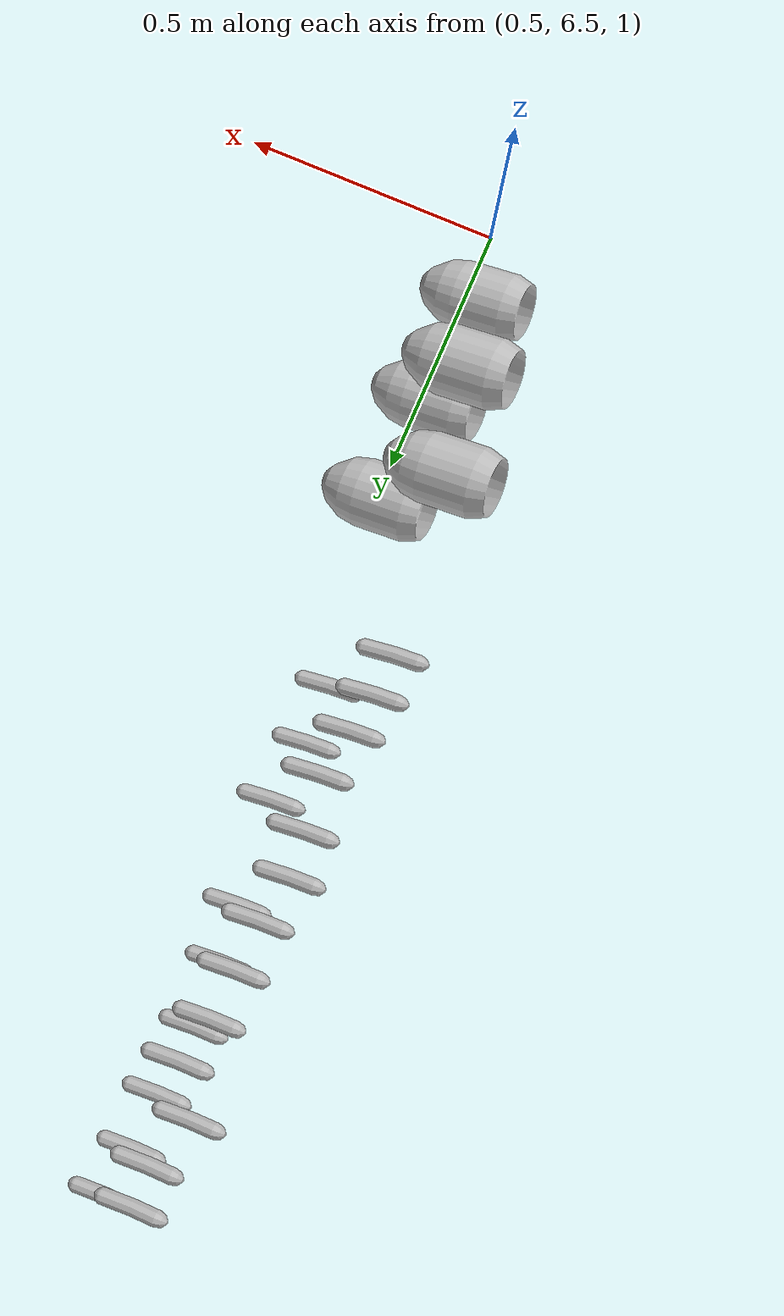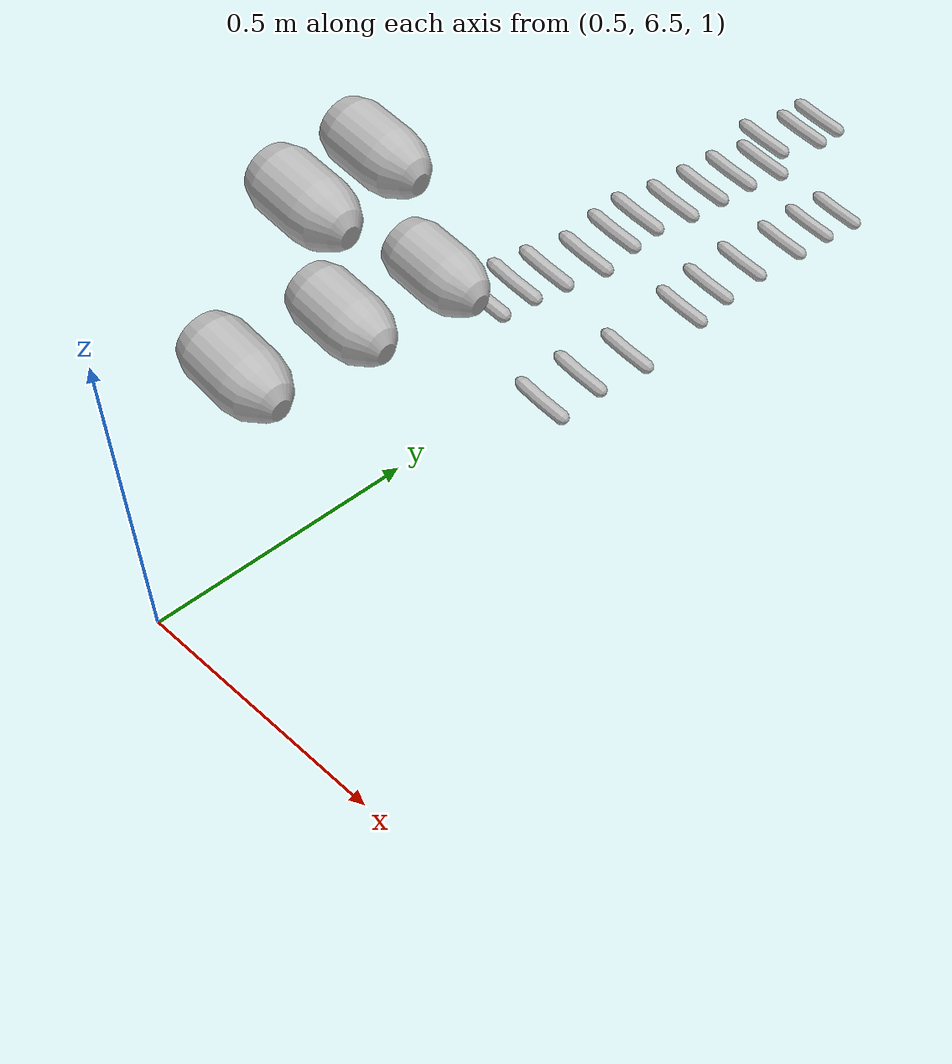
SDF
<sdf version="1.6">
 <world name="default">
  <model name="lettuce_clone_2">
   <link name="link_0">
    <inertial>
     <mass>1</mass>
     <inertia>
      <ixx>0.166667</ixx>
      <ixy>0</ixy>
      <ixz>0</ixz>
      <iyy>0.166667</iyy>
      <iyz>0</iyz>
      <izz>0.166667</izz>
     </inertia>
    </inertial>
    <visual name="visual">
     <geometry><mesh><uri>model://lettuce/meshes/lettuce.dae</uri><scale>3 3 3</scale></mesh></geometry>
    </visual>
    <collision name="collision">
     <geometry><mesh><uri>model://lettuce/meshes/lettuce.dae</uri><scale>3 3 3</scale></mesh></geometry>
     <surface>
      <friction>
       <ode><mu>1</mu><mu2>1</mu2><fdir1>0 0 0</fdir1><slip1>0</slip1><slip2>0</slip2></ode>
       <torsional>
        <coefficient>1</coefficient>
        <patch_radius>0</patch_radius>
        <surface_radius>0</surface_radius>
        <use_patch_radius>1</use_patch_radius>
        <ode><slip>0</slip></ode>
       </torsional>
      </friction>
      <bounce><restitution_coefficient>0</restitution_coefficient><threshold>1e+06</threshold></bounce>
      <contact>
       <collide_without_contact>0</collide_without_contact>
       <collide_without_contact_bitmask>1</collide_without_contact_bitmask>
       <collide_bitmask>1</collide_bitmask>
       <ode>
        <soft_cfm>0</soft_cfm>
        <soft_erp>0.2</soft_erp>
        <kp>1e+13</kp>
        <kd>1</kd>
        <max_vel>0.01</max_vel>
        <min_depth>0</min_depth>
       </ode>
       <bullet>
        <split_impulse>1</split_impulse>
        <split_impulse_penetration_threshold>-0.01</split_impulse_penetration_threshold>
        <soft_cfm>0</soft_cfm>
        <soft_erp>0.2</soft_erp>
        <kp>1e+13</kp>
        <kd>1</kd>
       </bullet>
      </contact>
     </surface>
    </collision>
   </link>
   <static>1</static>
   <pose>0.329296 6.93894 1.55681 3.14159 1.32136 3.14159</pose>
  </model>
  <model name="lettuce_clone_3">
   <link name="link_0">
    <inertial>
     <mass>1</mass>
     <inertia>
      <ixx>0.166667</ixx>
      <ixy>0</ixy>
      <ixz>0</ixz>
      <iyy>0.166667</iyy>
      <iyz>0</iyz>
      <izz>0.166667</izz>
     </inertia>
    </inertial>
    <visual name="visual">
     <geometry><mesh><uri>model://lettuce/meshes/lettuce.dae</uri><scale>3 3 3</scale></mesh></geometry>
    </visual>
    <collision name="collision">
     <geometry><mesh><uri>model://lettuce/meshes/lettuce.dae</uri><scale>3 3 3</scale></mesh></geometry>
     <surface>
      <friction>
       <ode><mu>1</mu><mu2>1</mu2><fdir1>0 0 0</fdir1><slip1>0</slip1><slip2>0</slip2></ode>
       <torsional>
        <coefficient>1</coefficient>
        <patch_radius>0</patch_radius>
        <surface_radius>0</surface_radius>
        <use_patch_radius>1</use_patch_radius>
        <ode><slip>0</slip></ode>
       </torsional>
      </friction>
      <bounce><restitution_coefficient>0</restitution_coefficient><threshold>1e+06</threshold></bounce>
      <contact>
       <collide_without_contact>0</collide_without_contact>
       <collide_without_contact_bitmask>1</collide_without_contact_bitmask>
       <collide_bitmask>1</collide_bitmask>
       <ode>
        <soft_cfm>0</soft_cfm>
        <soft_erp>0.2</soft_erp>
        <kp>1e+13</kp>
        <kd>1</kd>
        <max_vel>0.01</max_vel>
        <min_depth>0</min_depth>
       </ode>
       <bullet>
        <split_impulse>1</split_impulse>
        <split_impulse_penetration_threshold>-0.01</split_impulse_penetration_threshold>
        <soft_cfm>0</soft_cfm>
        <soft_erp>0.2</soft_erp>
        <kp>1e+13</kp>
        <kd>1</kd>
       </bullet>
      </contact>
     </surface>
    </collision>
   </link>
   <static>1</static>
   <pose>0.285818 7.12224 1.55681 3.14159 1.32136 3.14159</pose>
  </model>
  <model name="lettuce_clone_4_clone_1">
   <link name="link_0">
    <inertial>
     <mass>1</mass>
     <inertia>
      <ixx>0.166667</ixx>
      <ixy>0</ixy>
      <ixz>0</ixz>
      <iyy>0.166667</iyy>
      <iyz>0</iyz>
      <izz>0.166667</izz>
     </inertia>
    </inertial>
    <visual name="visual">
     <geometry><mesh><uri>model://lettuce/meshes/lettuce.dae</uri><scale>3 3 3</scale></mesh></geometry>
    </visual>
    <collision name="collision">
     <geometry><mesh><uri>model://lettuce/meshes/lettuce.dae</uri><scale>3 3 3</scale></mesh></geometry>
     <surface>
      <friction>
       <ode><mu>1</mu><mu2>1</mu2><fdir1>0 0 0</fdir1><slip1>0</slip1><slip2>0</slip2></ode>
       <torsional>
        <coefficient>1</coefficient>
        <patch_radius>0</patch_radius>
        <surface_radius>0</surface_radius>
        <use_patch_radius>1</use_patch_radius>
        <ode><slip>0</slip></ode>
       </torsional>
      </friction>
      <bounce><restitution_coefficient>0</restitution_coefficient><threshold>1e+06</threshold></bounce>
      <contact>
       <collide_without_contact>0</collide_without_contact>
       <collide_without_contact_bitmask>1</collide_without_contact_bitmask>
       <collide_bitmask>1</collide_bitmask>
       <ode>
        <soft_cfm>0</soft_cfm>
        <soft_erp>0.2</soft_erp>
        <kp>1e+13</kp>
        <kd>1</kd>
        <max_vel>0.01</max_vel>
        <min_depth>0</min_depth>
       </ode>
       <bullet>
        <split_impulse>1</split_impulse>
        <split_impulse_penetration_threshold>-0.01</split_impulse_penetration_threshold>
        <soft_cfm>0</soft_cfm>
        <soft_erp>0.2</soft_erp>
        <kp>1e+13</kp>
        <kd>1</kd>
       </bullet>
      </contact>
     </surface>
    </collision>
   </link>
   <static>1</static>
   <pose>0.364357 6.74665 1.35049 3.14159 1.32136 3.14159</pose>
  </model>
  <model name="lettuce_clone_4_clone_2">
   <link name="link_0">
    <inertial>
     <mass>1</mass>
     <inertia>
      <ixx>0.166667</ixx>
      <ixy>0</ixy>
      <ixz>0</ixz>
      <iyy>0.166667</iyy>
      <iyz>0</iyz>
      <izz>0.166667</izz>
     </inertia>
    </inertial>
    <visual name="visual">
     <geometry><mesh><uri>model://lettuce/meshes/lettuce.dae</uri><scale>3 3 3</scale></mesh></geometry>
    </visual>
    <collision name="collision">
     <geometry><mesh><uri>model://lettuce/meshes/lettuce.dae</uri><scale>3 3 3</scale></mesh></geometry>
     <surface>
      <friction>
       <ode><mu>1</mu><mu2>1</mu2><fdir1>0 0 0</fdir1><slip1>0</slip1><slip2>0</slip2></ode>
       <torsional>
        <coefficient>1</coefficient>
        <patch_radius>0</patch_radius>
        <surface_radius>0</surface_radius>
        <use_patch_radius>1</use_patch_radius>
        <ode><slip>0</slip></ode>
       </torsional>
      </friction>
      <bounce><restitution_coefficient>0</restitution_coefficient><threshold>1e+06</threshold></bounce>
      <contact>
       <collide_without_contact>0</collide_without_contact>
       <collide_without_contact_bitmask>1</collide_without_contact_bitmask>
       <collide_bitmask>1</collide_bitmask>
       <ode>
        <soft_cfm>0</soft_cfm>
        <soft_erp>0.2</soft_erp>
        <kp>1e+13</kp>
        <kd>1</kd>
        <max_vel>0.01</max_vel>
        <min_depth>0</min_depth>
       </ode>
       <bullet>
        <split_impulse>1</split_impulse>
        <split_impulse_penetration_threshold>-0.01</split_impulse_penetration_threshold>
        <soft_cfm>0</soft_cfm>
        <soft_erp>0.2</soft_erp>
        <kp>1e+13</kp>
        <kd>1</kd>
       </bullet>
      </contact>
     </surface>
    </collision>
   </link>
   <static>1</static>
   <pose>0.372097 6.95066 1.35049 3.14159 1.32136 3.14159</pose>
  </model>
  <model name="lettuce_clone_4_clone_3">
   <link name="link_0">
    <inertial>
     <mass>1</mass>
     <inertia>
      <ixx>0.166667</ixx>
      <ixy>0</ixy>
      <ixz>0</ixz>
      <iyy>0.166667</iyy>
      <iyz>0</iyz>
      <izz>0.166667</izz>
     </inertia>
    </inertial>
    <visual name="visual">
     <geometry><mesh><uri>model://lettuce/meshes/lettuce.dae</uri><scale>3 3 3</scale></mesh></geometry>
    </visual>
    <collision name="collision">
     <geometry><mesh><uri>model://lettuce/meshes/lettuce.dae</uri><scale>3 3 3</scale></mesh></geometry>
     <surface>
      <friction>
       <ode><mu>1</mu><mu2>1</mu2><fdir1>0 0 0</fdir1><slip1>0</slip1><slip2>0</slip2></ode>
       <torsional>
        <coefficient>1</coefficient>
        <patch_radius>0</patch_radius>
        <surface_radius>0</surface_radius>
        <use_patch_radius>1</use_patch_radius>
        <ode><slip>0</slip></ode>
       </torsional>
      </friction>
      <bounce><restitution_coefficient>0</restitution_coefficient><threshold>1e+06</threshold></bounce>
      <contact>
       <collide_without_contact>0</collide_without_contact>
       <collide_without_contact_bitmask>1</collide_without_contact_bitmask>
       <collide_bitmask>1</collide_bitmask>
       <ode>
        <soft_cfm>0</soft_cfm>
        <soft_erp>0.2</soft_erp>
        <kp>1e+13</kp>
        <kd>1</kd>
        <max_vel>0.01</max_vel>
        <min_depth>0</min_depth>
       </ode>
       <bullet>
        <split_impulse>1</split_impulse>
        <split_impulse_penetration_threshold>-0.01</split_impulse_penetration_threshold>
        <soft_cfm>0</soft_cfm>
        <soft_erp>0.2</soft_erp>
        <kp>1e+13</kp>
        <kd>1</kd>
       </bullet>
      </contact>
     </surface>
    </collision>
   </link>
   <static>1</static>
   <pose>0.382097 7.14967 1.35049 3.14159 1.32136 3.14159</pose>
  </model>
  <model name="cucumber_clone_11">
   <link name="link_0">
    <inertial>
     <mass>1</mass>
     <inertia>
      <ixx>0.166667</ixx>
      <ixy>0</ixy>
      <ixz>0</ixz>
      <iyy>0.166667</iyy>
      <iyz>0</iyz>
      <izz>0.166667</izz>
     </inertia>
    </inertial>
    <visual name="visual">
     <geometry><mesh><uri>model://cucumber/meshes/cucumber.dae</uri><scale>1 1 1</scale></mesh></geometry>
     <cast_shadows>0</cast_shadows>
    </visual>
    <collision name="collision">
     <geometry><mesh><uri>model://cucumber/meshes/cucumber.dae</uri><scale>1 1 1</scale></mesh></geometry>
     <surface>
      <friction>
       <ode><mu>1</mu><mu2>1</mu2><fdir1>0 0 0</fdir1><slip1>0</slip1><slip2>0</slip2></ode>
       <torsional>
        <coefficient>1</coefficient>
        <patch_radius>0</patch_radius>
        <surface_radius>0</surface_radius>
        <use_patch_radius>1</use_patch_radius>
        <ode><slip>0</slip></ode>
       </torsional>
      </friction>
      <bounce><restitution_coefficient>0</restitution_coefficient><threshold>1e+06</threshold></bounce>
      <contact>
       <collide_without_contact>0</collide_without_contact>
       <collide_without_contact_bitmask>1</collide_without_contact_bitmask>
       <collide_bitmask>1</collide_bitmask>
       <ode>
        <soft_cfm>0</soft_cfm>
        <soft_erp>0.2</soft_erp>
        <kp>1e+13</kp>
        <kd>1</kd>
        <max_vel>0.01</max_vel>
        <min_depth>0</min_depth>
       </ode>
       <bullet>
        <split_impulse>1</split_impulse>
        <split_impulse_penetration_threshold>-0.01</split_impulse_penetration_threshold>
        <soft_cfm>0</soft_cfm>
        <soft_erp>0.2</soft_erp>
        <kp>1e+13</kp>
        <kd>1</kd>
       </bullet>
      </contact>
     </surface>
    </collision>
   </link>
   <static>1</static>
   <pose>0.433363 8.16033 1.10565 0.305162 0 1.61482</pose>
  </model>
  <model name="cucumber_clone_11_clone">
   <link name="link_0">
    <inertial>
     <mass>1</mass>
     <inertia>
      <ixx>0.166667</ixx>
      <ixy>0</ixy>
      <ixz>0</ixz>
      <iyy>0.166667</iyy>
      <iyz>0</iyz>
      <izz>0.166667</izz>
     </inertia>
    </inertial>
    <visual name="visual">
     <geometry><mesh><uri>model://cucumber/meshes/cucumber.dae</uri><scale>1 1 1</scale></mesh></geometry>
     <cast_shadows>0</cast_shadows>
    </visual>
    <collision name="collision">
     <geometry><mesh><uri>model://cucumber/meshes/cucumber.dae</uri><scale>1 1 1</scale></mesh></geometry>
     <surface>
      <friction>
       <ode><mu>1</mu><mu2>1</mu2><fdir1>0 0 0</fdir1><slip1>0</slip1><slip2>0</slip2></ode>
       <torsional>
        <coefficient>1</coefficient>
        <patch_radius>0</patch_radius>
        <surface_radius>0</surface_radius>
        <use_patch_radius>1</use_patch_radius>
        <ode><slip>0</slip></ode>
       </torsional>
      </friction>
      <bounce><restitution_coefficient>0</restitution_coefficient><threshold>1e+06</threshold></bounce>
      <contact>
       <collide_without_contact>0</collide_without_contact>
       <collide_without_contact_bitmask>1</collide_without_contact_bitmask>
       <collide_bitmask>1</collide_bitmask>
       <ode>
        <soft_cfm>0</soft_cfm>
        <soft_erp>0.2</soft_erp>
        <kp>1e+13</kp>
        <kd>1</kd>
        <max_vel>0.01</max_vel>
        <min_depth>0</min_depth>
       </ode>
       <bullet>
        <split_impulse>1</split_impulse>
        <split_impulse_penetration_threshold>-0.01</split_impulse_penetration_threshold>
        <soft_cfm>0</soft_cfm>
        <soft_erp>0.2</soft_erp>
        <kp>1e+13</kp>
        <kd>1</kd>
       </bullet>
      </contact>
     </surface>
    </collision>
   </link>
   <static>1</static>
   <pose>0.368449 7.34401 1.10565 0.305162 0 1.61482</pose>
  </model>
  <model name="cucumber_clone_11_clone_0">
   <link name="link_0">
    <inertial>
     <mass>1</mass>
     <inertia>
      <ixx>0.166667</ixx>
      <ixy>0</ixy>
      <ixz>0</ixz>
      <iyy>0.166667</iyy>
      <iyz>0</iyz>
      <izz>0.166667</izz>
     </inertia>
    </inertial>
    <visual name="visual">
     <geometry><mesh><uri>model://cucumber/meshes/cucumber.dae</uri><scale>1 1 1</scale></mesh></geometry>
     <cast_shadows>0</cast_shadows>
    </visual>
    <collision name="collision">
     <geometry><mesh><uri>model://cucumber/meshes/cucumber.dae</uri><scale>1 1 1</scale></mesh></geometry>
     <surface>
      <friction>
       <ode><mu>1</mu><mu2>1</mu2><fdir1>0 0 0</fdir1><slip1>0</slip1><slip2>0</slip2></ode>
       <torsional>
        <coefficient>1</coefficient>
        <patch_radius>0</patch_radius>
        <surface_radius>0</surface_radius>
        <use_patch_radius>1</use_patch_radius>
        <ode><slip>0</slip></ode>
       </torsional>
      </friction>
      <bounce><restitution_coefficient>0</restitution_coefficient><threshold>1e+06</threshold></bounce>
      <contact>
       <collide_without_contact>0</collide_without_contact>
       <collide_without_contact_bitmask>1</collide_without_contact_bitmask>
       <collide_bitmask>1</collide_bitmask>
       <ode>
        <soft_cfm>0</soft_cfm>
        <soft_erp>0.2</soft_erp>
        <kp>1e+13</kp>
        <kd>1</kd>
        <max_vel>0.01</max_vel>
        <min_depth>0</min_depth>
       </ode>
       <bullet>
        <split_impulse>1</split_impulse>
        <split_impulse_penetration_threshold>-0.01</split_impulse_penetration_threshold>
        <soft_cfm>0</soft_cfm>
        <soft_erp>0.2</soft_erp>
        <kp>1e+13</kp>
        <kd>1</kd>
       </bullet>
      </contact>
     </surface>
    </collision>
   </link>
   <static>1</static>
   <pose>0.373405 7.42603 1.10565 0.305162 0 1.61482</pose>
  </model>
  <model name="cucumber_clone_11_clone_1">
   <link name="link_0">
    <inertial>
     <mass>1</mass>
     <inertia>
      <ixx>0.166667</ixx>
      <ixy>0</ixy>
      <ixz>0</ixz>
      <iyy>0.166667</iyy>
      <iyz>0</iyz>
      <izz>0.166667</izz>
     </inertia>
    </inertial>
    <visual name="visual">
     <geometry><mesh><uri>model://cucumber/meshes/cucumber.dae</uri><scale>1 1 1</scale></mesh></geometry>
     <cast_shadows>0</cast_shadows>
    </visual>
    <collision name="collision">
     <geometry><mesh><uri>model://cucumber/meshes/cucumber.dae</uri><scale>1 1 1</scale></mesh></geometry>
     <surface>
      <friction>
       <ode><mu>1</mu><mu2>1</mu2><fdir1>0 0 0</fdir1><slip1>0</slip1><slip2>0</slip2></ode>
       <torsional>
        <coefficient>1</coefficient>
        <patch_radius>0</patch_radius>
        <surface_radius>0</surface_radius>
        <use_patch_radius>1</use_patch_radius>
        <ode><slip>0</slip></ode>
       </torsional>
      </friction>
      <bounce><restitution_coefficient>0</restitution_coefficient><threshold>1e+06</threshold></bounce>
      <contact>
       <collide_without_contact>0</collide_without_contact>
       <collide_without_contact_bitmask>1</collide_without_contact_bitmask>
       <collide_bitmask>1</collide_bitmask>
       <ode>
        <soft_cfm>0</soft_cfm>
        <soft_erp>0.2</soft_erp>
        <kp>1e+13</kp>
        <kd>1</kd>
        <max_vel>0.01</max_vel>
        <min_depth>0</min_depth>
       </ode>
       <bullet>
        <split_impulse>1</split_impulse>
        <split_impulse_penetration_threshold>-0.01</split_impulse_penetration_threshold>
        <soft_cfm>0</soft_cfm>
        <soft_erp>0.2</soft_erp>
        <kp>1e+13</kp>
        <kd>1</kd>
       </bullet>
      </contact>
     </surface>
    </collision>
   </link>
   <static>1</static>
   <pose>0.386532 7.50345 1.10565 0.305162 0 1.61482</pose>
  </model>
  <model name="cucumber_clone_11_clone_2">
   <link name="link_0">
    <inertial>
     <mass>1</mass>
     <inertia>
      <ixx>0.166667</ixx>
      <ixy>0</ixy>
      <ixz>0</ixz>
      <iyy>0.166667</iyy>
      <iyz>0</iyz>
      <izz>0.166667</izz>
     </inertia>
    </inertial>
    <visual name="visual">
     <geometry><mesh><uri>model://cucumber/meshes/cucumber.dae</uri><scale>1 1 1</scale></mesh></geometry>
     <cast_shadows>0</cast_shadows>
    </visual>
    <collision name="collision">
     <geometry><mesh><uri>model://cucumber/meshes/cucumber.dae</uri><scale>1 1 1</scale></mesh></geometry>
     <surface>
      <friction>
       <ode><mu>1</mu><mu2>1</mu2><fdir1>0 0 0</fdir1><slip1>0</slip1><slip2>0</slip2></ode>
       <torsional>
        <coefficient>1</coefficient>
        <patch_radius>0</patch_radius>
        <surface_radius>0</surface_radius>
        <use_patch_radius>1</use_patch_radius>
        <ode><slip>0</slip></ode>
       </torsional>
      </friction>
      <bounce><restitution_coefficient>0</restitution_coefficient><threshold>1e+06</threshold></bounce>
      <contact>
       <collide_without_contact>0</collide_without_contact>
       <collide_without_contact_bitmask>1</collide_without_contact_bitmask>
       <collide_bitmask>1</collide_bitmask>
       <ode>
        <soft_cfm>0</soft_cfm>
        <soft_erp>0.2</soft_erp>
        <kp>1e+13</kp>
        <kd>1</kd>
        <max_vel>0.01</max_vel>
        <min_depth>0</min_depth>
       </ode>
       <bullet>
        <split_impulse>1</split_impulse>
        <split_impulse_penetration_threshold>-0.01</split_impulse_penetration_threshold>
        <soft_cfm>0</soft_cfm>
        <soft_erp>0.2</soft_erp>
        <kp>1e+13</kp>
        <kd>1</kd>
       </bullet>
      </contact>
     </surface>
    </collision>
   </link>
   <static>1</static>
   <pose>0.408234 7.59748 1.10565 0.305162 0 1.61482</pose>
  </model>
  <model name="cucumber_clone_11_clone_3">
   <link name="link_0">
    <inertial>
     <mass>1</mass>
     <inertia>
      <ixx>0.166667</ixx>
      <ixy>0</ixy>
      <ixz>0</ixz>
      <iyy>0.166667</iyy>
      <iyz>0</iyz>
      <izz>0.166667</izz>
     </inertia>
    </inertial>
    <visual name="visual">
     <geometry><mesh><uri>model://cucumber/meshes/cucumber.dae</uri><scale>1 1 1</scale></mesh></geometry>
     <cast_shadows>0</cast_shadows>
    </visual>
    <collision name="collision">
     <geometry><mesh><uri>model://cucumber/meshes/cucumber.dae</uri><scale>1 1 1</scale></mesh></geometry>
     <surface>
      <friction>
       <ode><mu>1</mu><mu2>1</mu2><fdir1>0 0 0</fdir1><slip1>0</slip1><slip2>0</slip2></ode>
       <torsional>
        <coefficient>1</coefficient>
        <patch_radius>0</patch_radius>
        <surface_radius>0</surface_radius>
        <use_patch_radius>1</use_patch_radius>
        <ode><slip>0</slip></ode>
       </torsional>
      </friction>
      <bounce><restitution_coefficient>0</restitution_coefficient><threshold>1e+06</threshold></bounce>
      <contact>
       <collide_without_contact>0</collide_without_contact>
       <collide_without_contact_bitmask>1</collide_without_contact_bitmask>
       <collide_bitmask>1</collide_bitmask>
       <ode>
        <soft_cfm>0</soft_cfm>
        <soft_erp>0.2</soft_erp>
        <kp>1e+13</kp>
        <kd>1</kd>
        <max_vel>0.01</max_vel>
        <min_depth>0</min_depth>
       </ode>
       <bullet>
        <split_impulse>1</split_impulse>
        <split_impulse_penetration_threshold>-0.01</split_impulse_penetration_threshold>
        <soft_cfm>0</soft_cfm>
        <soft_erp>0.2</soft_erp>
        <kp>1e+13</kp>
        <kd>1</kd>
       </bullet>
      </contact>
     </surface>
    </collision>
   </link>
   <static>1</static>
   <pose>0.391285 7.70251 1.10565 0.305162 0 1.61482</pose>
  </model>
  <model name="cucumber_clone_11_clone_4">
   <link name="link_0">
    <inertial>
     <mass>1</mass>
     <inertia>
      <ixx>0.166667</ixx>
      <ixy>0</ixy>
      <ixz>0</ixz>
      <iyy>0.166667</iyy>
      <iyz>0</iyz>
      <izz>0.166667</izz>
     </inertia>
    </inertial>
    <visual name="visual">
     <geometry><mesh><uri>model://cucumber/meshes/cucumber.dae</uri><scale>1 1 1</scale></mesh></geometry>
     <cast_shadows>0</cast_shadows>
    </visual>
    <collision name="collision">
     <geometry><mesh><uri>model://cucumber/meshes/cucumber.dae</uri><scale>1 1 1</scale></mesh></geometry>
     <surface>
      <friction>
       <ode><mu>1</mu><mu2>1</mu2><fdir1>0 0 0</fdir1><slip1>0</slip1><slip2>0</slip2></ode>
       <torsional>
        <coefficient>1</coefficient>
        <patch_radius>0</patch_radius>
        <surface_radius>0</surface_radius>
        <use_patch_radius>1</use_patch_radius>
        <ode><slip>0</slip></ode>
       </torsional>
      </friction>
      <bounce><restitution_coefficient>0</restitution_coefficient><threshold>1e+06</threshold></bounce>
      <contact>
       <collide_without_contact>0</collide_without_contact>
       <collide_without_contact_bitmask>1</collide_without_contact_bitmask>
       <collide_bitmask>1</collide_bitmask>
       <ode>
        <soft_cfm>0</soft_cfm>
        <soft_erp>0.2</soft_erp>
        <kp>1e+13</kp>
        <kd>1</kd>
        <max_vel>0.01</max_vel>
        <min_depth>0</min_depth>
       </ode>
       <bullet>
        <split_impulse>1</split_impulse>
        <split_impulse_penetration_threshold>-0.01</split_impulse_penetration_threshold>
        <soft_cfm>0</soft_cfm>
        <soft_erp>0.2</soft_erp>
        <kp>1e+13</kp>
        <kd>1</kd>
       </bullet>
      </contact>
     </surface>
    </collision>
   </link>
   <static>1</static>
   <pose>0.380927 7.78866 1.10565 0.305162 0 1.61482</pose>
  </model>
  <model name="cucumber_clone_11_clone_5">
   <link name="link_0">
    <inertial>
     <mass>1</mass>
     <inertia>
      <ixx>0.166667</ixx>
      <ixy>0</ixy>
      <ixz>0</ixz>
      <iyy>0.166667</iyy>
      <iyz>0</iyz>
      <izz>0.166667</izz>
     </inertia>
    </inertial>
    <visual name="visual">
     <geometry><mesh><uri>model://cucumber/meshes/cucumber.dae</uri><scale>1 1 1</scale></mesh></geometry>
     <cast_shadows>0</cast_shadows>
    </visual>
    <collision name="collision">
     <geometry><mesh><uri>model://cucumber/meshes/cucumber.dae</uri><scale>1 1 1</scale></mesh></geometry>
     <surface>
      <friction>
       <ode><mu>1</mu><mu2>1</mu2><fdir1>0 0 0</fdir1><slip1>0</slip1><slip2>0</slip2></ode>
       <torsional>
        <coefficient>1</coefficient>
        <patch_radius>0</patch_radius>
        <surface_radius>0</surface_radius>
        <use_patch_radius>1</use_patch_radius>
        <ode><slip>0</slip></ode>
       </torsional>
      </friction>
      <bounce><restitution_coefficient>0</restitution_coefficient><threshold>1e+06</threshold></bounce>
      <contact>
       <collide_without_contact>0</collide_without_contact>
       <collide_without_contact_bitmask>1</collide_without_contact_bitmask>
       <collide_bitmask>1</collide_bitmask>
       <ode>
        <soft_cfm>0</soft_cfm>
        <soft_erp>0.2</soft_erp>
        <kp>1e+13</kp>
        <kd>1</kd>
        <max_vel>0.01</max_vel>
        <min_depth>0</min_depth>
       </ode>
       <bullet>
        <split_impulse>1</split_impulse>
        <split_impulse_penetration_threshold>-0.01</split_impulse_penetration_threshold>
        <soft_cfm>0</soft_cfm>
        <soft_erp>0.2</soft_erp>
        <kp>1e+13</kp>
        <kd>1</kd>
       </bullet>
      </contact>
     </surface>
    </collision>
   </link>
   <static>1</static>
   <pose>0.401426 7.88127 1.10565 0.305162 0 1.61482</pose>
  </model>
  <model name="cucumber_clone_11_clone_6">
   <link name="link_0">
    <inertial>
     <mass>1</mass>
     <inertia>
      <ixx>0.166667</ixx>
      <ixy>0</ixy>
      <ixz>0</ixz>
      <iyy>0.166667</iyy>
      <iyz>0</iyz>
      <izz>0.166667</izz>
     </inertia>
    </inertial>
    <visual name="visual">
     <geometry><mesh><uri>model://cucumber/meshes/cucumber.dae</uri><scale>1 1 1</scale></mesh></geometry>
     <cast_shadows>0</cast_shadows>
    </visual>
    <collision name="collision">
     <geometry><mesh><uri>model://cucumber/meshes/cucumber.dae</uri><scale>1 1 1</scale></mesh></geometry>
     <surface>
      <friction>
       <ode><mu>1</mu><mu2>1</mu2><fdir1>0 0 0</fdir1><slip1>0</slip1><slip2>0</slip2></ode>
       <torsional>
        <coefficient>1</coefficient>
        <patch_radius>0</patch_radius>
        <surface_radius>0</surface_radius>
        <use_patch_radius>1</use_patch_radius>
        <ode><slip>0</slip></ode>
       </torsional>
      </friction>
      <bounce><restitution_coefficient>0</restitution_coefficient><threshold>1e+06</threshold></bounce>
      <contact>
       <collide_without_contact>0</collide_without_contact>
       <collide_without_contact_bitmask>1</collide_without_contact_bitmask>
       <collide_bitmask>1</collide_bitmask>
       <ode>
        <soft_cfm>0</soft_cfm>
        <soft_erp>0.2</soft_erp>
        <kp>1e+13</kp>
        <kd>1</kd>
        <max_vel>0.01</max_vel>
        <min_depth>0</min_depth>
       </ode>
       <bullet>
        <split_impulse>1</split_impulse>
        <split_impulse_penetration_threshold>-0.01</split_impulse_penetration_threshold>
        <soft_cfm>0</soft_cfm>
        <soft_erp>0.2</soft_erp>
        <kp>1e+13</kp>
        <kd>1</kd>
       </bullet>
      </contact>
     </surface>
    </collision>
   </link>
   <static>1</static>
   <pose>0.406674 7.97737 1.10565 0.305162 0 1.61482</pose>
  </model>
  <model name="cucumber_clone_11_clone_7">
   <link name="link_0">
    <inertial>
     <mass>1</mass>
     <inertia>
      <ixx>0.166667</ixx>
      <ixy>0</ixy>
      <ixz>0</ixz>
      <iyy>0.166667</iyy>
      <iyz>0</iyz>
      <izz>0.166667</izz>
     </inertia>
    </inertial>
    <visual name="visual">
     <geometry><mesh><uri>model://cucumber/meshes/cucumber.dae</uri><scale>1 1 1</scale></mesh></geometry>
     <cast_shadows>0</cast_shadows>
    </visual>
    <collision name="collision">
     <geometry><mesh><uri>model://cucumber/meshes/cucumber.dae</uri><scale>1 1 1</scale></mesh></geometry>
     <surface>
      <friction>
       <ode><mu>1</mu><mu2>1</mu2><fdir1>0 0 0</fdir1><slip1>0</slip1><slip2>0</slip2></ode>
       <torsional>
        <coefficient>1</coefficient>
        <patch_radius>0</patch_radius>
        <surface_radius>0</surface_radius>
        <use_patch_radius>1</use_patch_radius>
        <ode><slip>0</slip></ode>
       </torsional>
      </friction>
      <bounce><restitution_coefficient>0</restitution_coefficient><threshold>1e+06</threshold></bounce>
      <contact>
       <collide_without_contact>0</collide_without_contact>
       <collide_without_contact_bitmask>1</collide_without_contact_bitmask>
       <collide_bitmask>1</collide_bitmask>
       <ode>
        <soft_cfm>0</soft_cfm>
        <soft_erp>0.2</soft_erp>
        <kp>1e+13</kp>
        <kd>1</kd>
        <max_vel>0.01</max_vel>
        <min_depth>0</min_depth>
       </ode>
       <bullet>
        <split_impulse>1</split_impulse>
        <split_impulse_penetration_threshold>-0.01</split_impulse_penetration_threshold>
        <soft_cfm>0</soft_cfm>
        <soft_erp>0.2</soft_erp>
        <kp>1e+13</kp>
        <kd>1</kd>
       </bullet>
      </contact>
     </surface>
    </collision>
   </link>
   <static>1</static>
   <pose>0.411838 8.07213 1.10565 0.305162 0 1.61482</pose>
  </model>
  <model name="cucumber_clone_11_clone_8">
   <link name="link_0">
    <inertial>
     <mass>1</mass>
     <inertia>
      <ixx>0.166667</ixx>
      <ixy>0</ixy>
      <ixz>0</ixz>
      <iyy>0.166667</iyy>
      <iyz>0</iyz>
      <izz>0.166667</izz>
     </inertia>
    </inertial>
    <visual name="visual">
     <geometry><mesh><uri>model://cucumber/meshes/cucumber.dae</uri><scale>1 1 1</scale></mesh></geometry>
     <cast_shadows>0</cast_shadows>
    </visual>
    <collision name="collision">
     <geometry><mesh><uri>model://cucumber/meshes/cucumber.dae</uri><scale>1 1 1</scale></mesh></geometry>
     <surface>
      <friction>
       <ode><mu>1</mu><mu2>1</mu2><fdir1>0 0 0</fdir1><slip1>0</slip1><slip2>0</slip2></ode>
       <torsional>
        <coefficient>1</coefficient>
        <patch_radius>0</patch_radius>
        <surface_radius>0</surface_radius>
        <use_patch_radius>1</use_patch_radius>
        <ode><slip>0</slip></ode>
       </torsional>
      </friction>
      <bounce><restitution_coefficient>0</restitution_coefficient><threshold>1e+06</threshold></bounce>
      <contact>
       <collide_without_contact>0</collide_without_contact>
       <collide_without_contact_bitmask>1</collide_without_contact_bitmask>
       <collide_bitmask>1</collide_bitmask>
       <ode>
        <soft_cfm>0</soft_cfm>
        <soft_erp>0.2</soft_erp>
        <kp>1e+13</kp>
        <kd>1</kd>
        <max_vel>0.01</max_vel>
        <min_depth>0</min_depth>
       </ode>
       <bullet>
        <split_impulse>1</split_impulse>
        <split_impulse_penetration_threshold>-0.01</split_impulse_penetration_threshold>
        <soft_cfm>0</soft_cfm>
        <soft_erp>0.2</soft_erp>
        <kp>1e+13</kp>
        <kd>1</kd>
       </bullet>
      </contact>
     </surface>
    </collision>
   </link>
   <static>1</static>
   <pose>0.374037 8.24542 1.10565 0.305162 0 1.61482</pose>
  </model>
  <model name="cucumber_clone_11_clone_9">
   <link name="link_0">
    <inertial>
     <mass>1</mass>
     <inertia>
      <ixx>0.166667</ixx>
      <ixy>0</ixy>
      <ixz>0</ixz>
      <iyy>0.166667</iyy>
      <iyz>0</iyz>
      <izz>0.166667</izz>
     </inertia>
    </inertial>
    <visual name="visual">
     <geometry><mesh><uri>model://cucumber/meshes/cucumber.dae</uri><scale>1 1 1</scale></mesh></geometry>
     <cast_shadows>0</cast_shadows>
    </visual>
    <collision name="collision">
     <geometry><mesh><uri>model://cucumber/meshes/cucumber.dae</uri><scale>1 1 1</scale></mesh></geometry>
     <surface>
      <friction>
       <ode><mu>1</mu><mu2>1</mu2><fdir1>0 0 0</fdir1><slip1>0</slip1><slip2>0</slip2></ode>
       <torsional>
        <coefficient>1</coefficient>
        <patch_radius>0</patch_radius>
        <surface_radius>0</surface_radius>
        <use_patch_radius>1</use_patch_radius>
        <ode><slip>0</slip></ode>
       </torsional>
      </friction>
      <bounce><restitution_coefficient>0</restitution_coefficient><threshold>1e+06</threshold></bounce>
      <contact>
       <collide_without_contact>0</collide_without_contact>
       <collide_without_contact_bitmask>1</collide_without_contact_bitmask>
       <collide_bitmask>1</collide_bitmask>
       <ode>
        <soft_cfm>0</soft_cfm>
        <soft_erp>0.2</soft_erp>
        <kp>1e+13</kp>
        <kd>1</kd>
        <max_vel>0.01</max_vel>
        <min_depth>0</min_depth>
       </ode>
       <bullet>
        <split_impulse>1</split_impulse>
        <split_impulse_penetration_threshold>-0.01</split_impulse_penetration_threshold>
        <soft_cfm>0</soft_cfm>
        <soft_erp>0.2</soft_erp>
        <kp>1e+13</kp>
        <kd>1</kd>
       </bullet>
      </contact>
     </surface>
    </collision>
   </link>
   <static>1</static>
   <pose>0.410152 8.34446 1.10565 0.305162 0 1.61482</pose>
  </model>
  <model name="cucumber_clone_11_clone_10">
   <link name="link_0">
    <inertial>
     <mass>1</mass>
     <inertia>
      <ixx>0.166667</ixx>
      <ixy>0</ixy>
      <ixz>0</ixz>
      <iyy>0.166667</iyy>
      <iyz>0</iyz>
      <izz>0.166667</izz>
     </inertia>
    </inertial>
    <visual name="visual">
     <geometry><mesh><uri>model://cucumber/meshes/cucumber.dae</uri><scale>1 1 1</scale></mesh></geometry>
     <cast_shadows>0</cast_shadows>
    </visual>
    <collision name="collision">
     <geometry><mesh><uri>model://cucumber/meshes/cucumber.dae</uri><scale>1 1 1</scale></mesh></geometry>
     <surface>
      <friction>
       <ode><mu>1</mu><mu2>1</mu2><fdir1>0 0 0</fdir1><slip1>0</slip1><slip2>0</slip2></ode>
       <torsional>
        <coefficient>1</coefficient>
        <patch_radius>0</patch_radius>
        <surface_radius>0</surface_radius>
        <use_patch_radius>1</use_patch_radius>
        <ode><slip>0</slip></ode>
       </torsional>
      </friction>
      <bounce><restitution_coefficient>0</restitution_coefficient><threshold>1e+06</threshold></bounce>
      <contact>
       <collide_without_contact>0</collide_without_contact>
       <collide_without_contact_bitmask>1</collide_without_contact_bitmask>
       <collide_bitmask>1</collide_bitmask>
       <ode>
        <soft_cfm>0</soft_cfm>
        <soft_erp>0.2</soft_erp>
        <kp>1e+13</kp>
        <kd>1</kd>
        <max_vel>0.01</max_vel>
        <min_depth>0</min_depth>
       </ode>
       <bullet>
        <split_impulse>1</split_impulse>
        <split_impulse_penetration_threshold>-0.01</split_impulse_penetration_threshold>
        <soft_cfm>0</soft_cfm>
        <soft_erp>0.2</soft_erp>
        <kp>1e+13</kp>
        <kd>1</kd>
       </bullet>
      </contact>
     </surface>
    </collision>
   </link>
   <static>1</static>
   <pose>0.406847 8.41999 1.10565 0.305162 0 1.61482</pose>
  </model>
  <model name="cucumber_clone_11_clone_11_clone_7">
   <link name="link_0">
    <inertial>
     <mass>1</mass>
     <inertia>
      <ixx>0.166667</ixx>
      <ixy>0</ixy>
      <ixz>0</ixz>
      <iyy>0.166667</iyy>
      <iyz>0</iyz>
      <izz>0.166667</izz>
     </inertia>
    </inertial>
    <visual name="visual">
     <geometry><mesh><uri>model://cucumber/meshes/cucumber.dae</uri><scale>1 1 1</scale></mesh></geometry>
     <cast_shadows>0</cast_shadows>
    </visual>
    <collision name="collision">
     <geometry><mesh><uri>model://cucumber/meshes/cucumber.dae</uri><scale>1 1 1</scale></mesh></geometry>
     <surface>
      <friction>
       <ode><mu>1</mu><mu2>1</mu2><fdir1>0 0 0</fdir1><slip1>0</slip1><slip2>0</slip2></ode>
       <torsional>
        <coefficient>1</coefficient>
        <patch_radius>0</patch_radius>
        <surface_radius>0</surface_radius>
        <use_patch_radius>1</use_patch_radius>
        <ode><slip>0</slip></ode>
       </torsional>
      </friction>
      <bounce><restitution_coefficient>0</restitution_coefficient><threshold>1e+06</threshold></bounce>
      <contact>
       <collide_without_contact>0</collide_without_contact>
       <collide_without_contact_bitmask>1</collide_without_contact_bitmask>
       <collide_bitmask>1</collide_bitmask>
       <ode>
        <soft_cfm>0</soft_cfm>
        <soft_erp>0.2</soft_erp>
        <kp>1e+13</kp>
        <kd>1</kd>
        <max_vel>0.01</max_vel>
        <min_depth>0</min_depth>
       </ode>
       <bullet>
        <split_impulse>1</split_impulse>
        <split_impulse_penetration_threshold>-0.01</split_impulse_penetration_threshold>
        <soft_cfm>0</soft_cfm>
        <soft_erp>0.2</soft_erp>
        <kp>1e+13</kp>
        <kd>1</kd>
       </bullet>
      </contact>
     </surface>
    </collision>
   </link>
   <static>1</static>
   <pose>0.465698 7.40193 0.869908 0.305162 0 1.61482</pose>
  </model>
  <model name="cucumber_clone_11_clone_11_clone_7_clone">
   <link name="link_0">
    <inertial>
     <mass>1</mass>
     <inertia>
      <ixx>0.166667</ixx>
      <ixy>0</ixy>
      <ixz>0</ixz>
      <iyy>0.166667</iyy>
      <iyz>0</iyz>
      <izz>0.166667</izz>
     </inertia>
    </inertial>
    <visual name="visual">
     <geometry><mesh><uri>model://cucumber/meshes/cucumber.dae</uri><scale>1 1 1</scale></mesh></geometry>
     <cast_shadows>0</cast_shadows>
    </visual>
    <collision name="collision">
     <geometry><mesh><uri>model://cucumber/meshes/cucumber.dae</uri><scale>1 1 1</scale></mesh></geometry>
     <surface>
      <friction>
       <ode><mu>1</mu><mu2>1</mu2><fdir1>0 0 0</fdir1><slip1>0</slip1><slip2>0</slip2></ode>
       <torsional>
        <coefficient>1</coefficient>
        <patch_radius>0</patch_radius>
        <surface_radius>0</surface_radius>
        <use_patch_radius>1</use_patch_radius>
        <ode><slip>0</slip></ode>
       </torsional>
      </friction>
      <bounce><restitution_coefficient>0</restitution_coefficient><threshold>1e+06</threshold></bounce>
      <contact>
       <collide_without_contact>0</collide_without_contact>
       <collide_without_contact_bitmask>1</collide_without_contact_bitmask>
       <collide_bitmask>1</collide_bitmask>
       <ode>
        <soft_cfm>0</soft_cfm>
        <soft_erp>0.2</soft_erp>
        <kp>1e+13</kp>
        <kd>1</kd>
        <max_vel>0.01</max_vel>
        <min_depth>0</min_depth>
       </ode>
       <bullet>
        <split_impulse>1</split_impulse>
        <split_impulse_penetration_threshold>-0.01</split_impulse_penetration_threshold>
        <soft_cfm>0</soft_cfm>
        <soft_erp>0.2</soft_erp>
        <kp>1e+13</kp>
        <kd>1</kd>
       </bullet>
      </contact>
     </surface>
    </collision>
   </link>
   <static>1</static>
   <pose>0.462137 7.52072 0.869908 0.305162 0 1.61482</pose>
  </model>
  <model name="cucumber_clone_11_clone_11_clone_7_clone_0">
   <link name="link_0">
    <inertial>
     <mass>1</mass>
     <inertia>
      <ixx>0.166667</ixx>
      <ixy>0</ixy>
      <ixz>0</ixz>
      <iyy>0.166667</iyy>
      <iyz>0</iyz>
      <izz>0.166667</izz>
     </inertia>
    </inertial>
    <visual name="visual">
     <geometry><mesh><uri>model://cucumber/meshes/cucumber.dae</uri><scale>1 1 1</scale></mesh></geometry>
     <cast_shadows>0</cast_shadows>
    </visual>
    <collision name="collision">
     <geometry><mesh><uri>model://cucumber/meshes/cucumber.dae</uri><scale>1 1 1</scale></mesh></geometry>
     <surface>
      <friction>
       <ode><mu>1</mu><mu2>1</mu2><fdir1>0 0 0</fdir1><slip1>0</slip1><slip2>0</slip2></ode>
       <torsional>
        <coefficient>1</coefficient>
        <patch_radius>0</patch_radius>
        <surface_radius>0</surface_radius>
        <use_patch_radius>1</use_patch_radius>
        <ode><slip>0</slip></ode>
       </torsional>
      </friction>
      <bounce><restitution_coefficient>0</restitution_coefficient><threshold>1e+06</threshold></bounce>
      <contact>
       <collide_without_contact>0</collide_without_contact>
       <collide_without_contact_bitmask>1</collide_without_contact_bitmask>
       <collide_bitmask>1</collide_bitmask>
       <ode>
        <soft_cfm>0</soft_cfm>
        <soft_erp>0.2</soft_erp>
        <kp>1e+13</kp>
        <kd>1</kd>
        <max_vel>0.01</max_vel>
        <min_depth>0</min_depth>
       </ode>
       <bullet>
        <split_impulse>1</split_impulse>
        <split_impulse_penetration_threshold>-0.01</split_impulse_penetration_threshold>
        <soft_cfm>0</soft_cfm>
        <soft_erp>0.2</soft_erp>
        <kp>1e+13</kp>
        <kd>1</kd>
       </bullet>
      </contact>
     </surface>
    </collision>
   </link>
   <static>1</static>
   <pose>0.480555 7.64752 0.869908 0.305162 0 1.61482</pose>
  </model>
  <model name="cucumber_clone_11_clone_11_clone_7_clone_2">
   <link name="link_0">
    <inertial>
     <mass>1</mass>
     <inertia>
      <ixx>0.166667</ixx>
      <ixy>0</ixy>
      <ixz>0</ixz>
      <iyy>0.166667</iyy>
      <iyz>0</iyz>
      <izz>0.166667</izz>
     </inertia>
    </inertial>
    <visual name="visual">
     <geometry><mesh><uri>model://cucumber/meshes/cucumber.dae</uri><scale>1 1 1</scale></mesh></geometry>
     <cast_shadows>0</cast_shadows>
    </visual>
    <collision name="collision">
     <geometry><mesh><uri>model://cucumber/meshes/cucumber.dae</uri><scale>1 1 1</scale></mesh></geometry>
     <surface>
      <friction>
       <ode><mu>1</mu><mu2>1</mu2><fdir1>0 0 0</fdir1><slip1>0</slip1><slip2>0</slip2></ode>
       <torsional>
        <coefficient>1</coefficient>
        <patch_radius>0</patch_radius>
        <surface_radius>0</surface_radius>
        <use_patch_radius>1</use_patch_radius>
        <ode><slip>0</slip></ode>
       </torsional>
      </friction>
      <bounce><restitution_coefficient>0</restitution_coefficient><threshold>1e+06</threshold></bounce>
      <contact>
       <collide_without_contact>0</collide_without_contact>
       <collide_without_contact_bitmask>1</collide_without_contact_bitmask>
       <collide_bitmask>1</collide_bitmask>
       <ode>
        <soft_cfm>0</soft_cfm>
        <soft_erp>0.2</soft_erp>
        <kp>1e+13</kp>
        <kd>1</kd>
        <max_vel>0.01</max_vel>
        <min_depth>0</min_depth>
       </ode>
       <bullet>
        <split_impulse>1</split_impulse>
        <split_impulse_penetration_threshold>-0.01</split_impulse_penetration_threshold>
        <soft_cfm>0</soft_cfm>
        <soft_erp>0.2</soft_erp>
        <kp>1e+13</kp>
        <kd>1</kd>
       </bullet>
      </contact>
     </surface>
    </collision>
   </link>
   <static>1</static>
   <pose>0.460194 7.85566 0.869908 0.305162 0 1.61482</pose>
  </model>
  <model name="cucumber_clone_11_clone_11_clone_7_clone_3">
   <link name="link_0">
    <inertial>
     <mass>1</mass>
     <inertia>
      <ixx>0.166667</ixx>
      <ixy>0</ixy>
      <ixz>0</ixz>
      <iyy>0.166667</iyy>
      <iyz>0</iyz>
      <izz>0.166667</izz>
     </inertia>
    </inertial>
    <visual name="visual">
     <geometry><mesh><uri>model://cucumber/meshes/cucumber.dae</uri><scale>1 1 1</scale></mesh></geometry>
     <cast_shadows>0</cast_shadows>
    </visual>
    <collision name="collision">
     <geometry><mesh><uri>model://cucumber/meshes/cucumber.dae</uri><scale>1 1 1</scale></mesh></geometry>
     <surface>
      <friction>
       <ode><mu>1</mu><mu2>1</mu2><fdir1>0 0 0</fdir1><slip1>0</slip1><slip2>0</slip2></ode>
       <torsional>
        <coefficient>1</coefficient>
        <patch_radius>0</patch_radius>
        <surface_radius>0</surface_radius>
        <use_patch_radius>1</use_patch_radius>
        <ode><slip>0</slip></ode>
       </torsional>
      </friction>
      <bounce><restitution_coefficient>0</restitution_coefficient><threshold>1e+06</threshold></bounce>
      <contact>
       <collide_without_contact>0</collide_without_contact>
       <collide_without_contact_bitmask>1</collide_without_contact_bitmask>
       <collide_bitmask>1</collide_bitmask>
       <ode>
        <soft_cfm>0</soft_cfm>
        <soft_erp>0.2</soft_erp>
        <kp>1e+13</kp>
        <kd>1</kd>
        <max_vel>0.01</max_vel>
        <min_depth>0</min_depth>
       </ode>
       <bullet>
        <split_impulse>1</split_impulse>
        <split_impulse_penetration_threshold>-0.01</split_impulse_penetration_threshold>
        <soft_cfm>0</soft_cfm>
        <soft_erp>0.2</soft_erp>
        <kp>1e+13</kp>
        <kd>1</kd>
       </bullet>
      </contact>
     </surface>
    </collision>
   </link>
   <static>1</static>
   <pose>0.447142 7.96656 0.869908 0.305162 0 1.61482</pose>
  </model>
  <model name="cucumber_clone_11_clone_11_clone_7_clone_4">
   <link name="link_0">
    <inertial>
     <mass>1</mass>
     <inertia>
      <ixx>0.166667</ixx>
      <ixy>0</ixy>
      <ixz>0</ixz>
      <iyy>0.166667</iyy>
      <iyz>0</iyz>
      <izz>0.166667</izz>
     </inertia>
    </inertial>
    <visual name="visual">
     <geometry><mesh><uri>model://cucumber/meshes/cucumber.dae</uri><scale>1 1 1</scale></mesh></geometry>
     <cast_shadows>0</cast_shadows>
    </visual>
    <collision name="collision">
     <geometry><mesh><uri>model://cucumber/meshes/cucumber.dae</uri><scale>1 1 1</scale></mesh></geometry>
     <surface>
      <friction>
       <ode><mu>1</mu><mu2>1</mu2><fdir1>0 0 0</fdir1><slip1>0</slip1><slip2>0</slip2></ode>
       <torsional>
        <coefficient>1</coefficient>
        <patch_radius>0</patch_radius>
        <surface_radius>0</surface_radius>
        <use_patch_radius>1</use_patch_radius>
        <ode><slip>0</slip></ode>
       </torsional>
      </friction>
      <bounce><restitution_coefficient>0</restitution_coefficient><threshold>1e+06</threshold></bounce>
      <contact>
       <collide_without_contact>0</collide_without_contact>
       <collide_without_contact_bitmask>1</collide_without_contact_bitmask>
       <collide_bitmask>1</collide_bitmask>
       <ode>
        <soft_cfm>0</soft_cfm>
        <soft_erp>0.2</soft_erp>
        <kp>1e+13</kp>
        <kd>1</kd>
        <max_vel>0.01</max_vel>
        <min_depth>0</min_depth>
       </ode>
       <bullet>
        <split_impulse>1</split_impulse>
        <split_impulse_penetration_threshold>-0.01</split_impulse_penetration_threshold>
        <soft_cfm>0</soft_cfm>
        <soft_erp>0.2</soft_erp>
        <kp>1e+13</kp>
        <kd>1</kd>
       </bullet>
      </contact>
     </surface>
    </collision>
   </link>
   <static>1</static>
   <pose>0.444359 8.09449 0.869908 0.305162 0 1.61482</pose>
  </model>
  <model name="cucumber_clone_11_clone_11_clone_7_clone_5">
   <link name="link_0">
    <inertial>
     <mass>1</mass>
     <inertia>
      <ixx>0.166667</ixx>
      <ixy>0</ixy>
      <ixz>0</ixz>
      <iyy>0.166667</iyy>
      <iyz>0</iyz>
      <izz>0.166667</izz>
     </inertia>
    </inertial>
    <visual name="visual">
     <geometry><mesh><uri>model://cucumber/meshes/cucumber.dae</uri><scale>1 1 1</scale></mesh></geometry>
     <cast_shadows>0</cast_shadows>
    </visual>
    <collision name="collision">
     <geometry><mesh><uri>model://cucumber/meshes/cucumber.dae</uri><scale>1 1 1</scale></mesh></geometry>
     <surface>
      <friction>
       <ode><mu>1</mu><mu2>1</mu2><fdir1>0 0 0</fdir1><slip1>0</slip1><slip2>0</slip2></ode>
       <torsional>
        <coefficient>1</coefficient>
        <patch_radius>0</patch_radius>
        <surface_radius>0</surface_radius>
        <use_patch_radius>1</use_patch_radius>
        <ode><slip>0</slip></ode>
       </torsional>
      </friction>
      <bounce><restitution_coefficient>0</restitution_coefficient><threshold>1e+06</threshold></bounce>
      <contact>
       <collide_without_contact>0</collide_without_contact>
       <collide_without_contact_bitmask>1</collide_without_contact_bitmask>
       <collide_bitmask>1</collide_bitmask>
       <ode>
        <soft_cfm>0</soft_cfm>
        <soft_erp>0.2</soft_erp>
        <kp>1e+13</kp>
        <kd>1</kd>
        <max_vel>0.01</max_vel>
        <min_depth>0</min_depth>
       </ode>
       <bullet>
        <split_impulse>1</split_impulse>
        <split_impulse_penetration_threshold>-0.01</split_impulse_penetration_threshold>
        <soft_cfm>0</soft_cfm>
        <soft_erp>0.2</soft_erp>
        <kp>1e+13</kp>
        <kd>1</kd>
       </bullet>
      </contact>
     </surface>
    </collision>
   </link>
   <static>1</static>
   <pose>0.457292 8.23402 0.869908 0.305162 0 1.61482</pose>
  </model>
  <model name="cucumber_clone_11_clone_11_clone_7_clone_6">
   <link name="link_0">
    <inertial>
     <mass>1</mass>
     <inertia>
      <ixx>0.166667</ixx>
      <ixy>0</ixy>
      <ixz>0</ixz>
      <iyy>0.166667</iyy>
      <iyz>0</iyz>
      <izz>0.166667</izz>
     </inertia>
    </inertial>
    <visual name="visual">
     <geometry><mesh><uri>model://cucumber/meshes/cucumber.dae</uri><scale>1 1 1</scale></mesh></geometry>
     <cast_shadows>0</cast_shadows>
    </visual>
    <collision name="collision">
     <geometry><mesh><uri>model://cucumber/meshes/cucumber.dae</uri><scale>1 1 1</scale></mesh></geometry>
     <surface>
      <friction>
       <ode><mu>1</mu><mu2>1</mu2><fdir1>0 0 0</fdir1><slip1>0</slip1><slip2>0</slip2></ode>
       <torsional>
        <coefficient>1</coefficient>
        <patch_radius>0</patch_radius>
        <surface_radius>0</surface_radius>
        <use_patch_radius>1</use_patch_radius>
        <ode><slip>0</slip></ode>
       </torsional>
      </friction>
      <bounce><restitution_coefficient>0</restitution_coefficient><threshold>1e+06</threshold></bounce>
      <contact>
       <collide_without_contact>0</collide_without_contact>
       <collide_without_contact_bitmask>1</collide_without_contact_bitmask>
       <collide_bitmask>1</collide_bitmask>
       <ode>
        <soft_cfm>0</soft_cfm>
        <soft_erp>0.2</soft_erp>
        <kp>1e+13</kp>
        <kd>1</kd>
        <max_vel>0.01</max_vel>
        <min_depth>0</min_depth>
       </ode>
       <bullet>
        <split_impulse>1</split_impulse>
        <split_impulse_penetration_threshold>-0.01</split_impulse_penetration_threshold>
        <soft_cfm>0</soft_cfm>
        <soft_erp>0.2</soft_erp>
        <kp>1e+13</kp>
        <kd>1</kd>
       </bullet>
      </contact>
     </surface>
    </collision>
   </link>
   <static>1</static>
   <pose>0.460211 8.343 0.869908 0.305162 0 1.61482</pose>
  </model>
  <model name="cucumber_clone_11_clone_11_clone_7_clone_7">
   <link name="link_0">
    <inertial>
     <mass>1</mass>
     <inertia>
      <ixx>0.166667</ixx>
      <ixy>0</ixy>
      <ixz>0</ixz>
      <iyy>0.166667</iyy>
      <iyz>0</iyz>
      <izz>0.166667</izz>
     </inertia>
    </inertial>
    <visual name="visual">
     <geometry><mesh><uri>model://cucumber/meshes/cucumber.dae</uri><scale>1 1 1</scale></mesh></geometry>
     <cast_shadows>0</cast_shadows>
    </visual>
    <collision name="collision">
     <geometry><mesh><uri>model://cucumber/meshes/cucumber.dae</uri><scale>1 1 1</scale></mesh></geometry>
     <surface>
      <friction>
       <ode><mu>1</mu><mu2>1</mu2><fdir1>0 0 0</fdir1><slip1>0</slip1><slip2>0</slip2></ode>
       <torsional>
        <coefficient>1</coefficient>
        <patch_radius>0</patch_radius>
        <surface_radius>0</surface_radius>
        <use_patch_radius>1</use_patch_radius>
        <ode><slip>0</slip></ode>
       </torsional>
      </friction>
      <bounce><restitution_coefficient>0</restitution_coefficient><threshold>1e+06</threshold></bounce>
      <contact>
       <collide_without_contact>0</collide_without_contact>
       <collide_without_contact_bitmask>1</collide_without_contact_bitmask>
       <collide_bitmask>1</collide_bitmask>
       <ode>
        <soft_cfm>0</soft_cfm>
        <soft_erp>0.2</soft_erp>
        <kp>1e+13</kp>
        <kd>1</kd>
        <max_vel>0.01</max_vel>
        <min_depth>0</min_depth>
       </ode>
       <bullet>
        <split_impulse>1</split_impulse>
        <split_impulse_penetration_threshold>-0.01</split_impulse_penetration_threshold>
        <soft_cfm>0</soft_cfm>
        <soft_erp>0.2</soft_erp>
        <kp>1e+13</kp>
        <kd>1</kd>
       </bullet>
      </contact>
     </surface>
    </collision>
   </link>
   <static>1</static>
   <pose>0.473905 8.4395 0.869908 0.305162 0 1.61482</pose>
  </model>
 </world>
</sdf>
